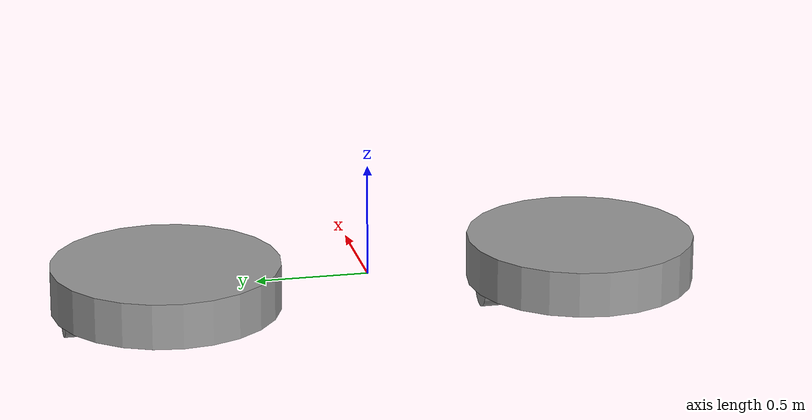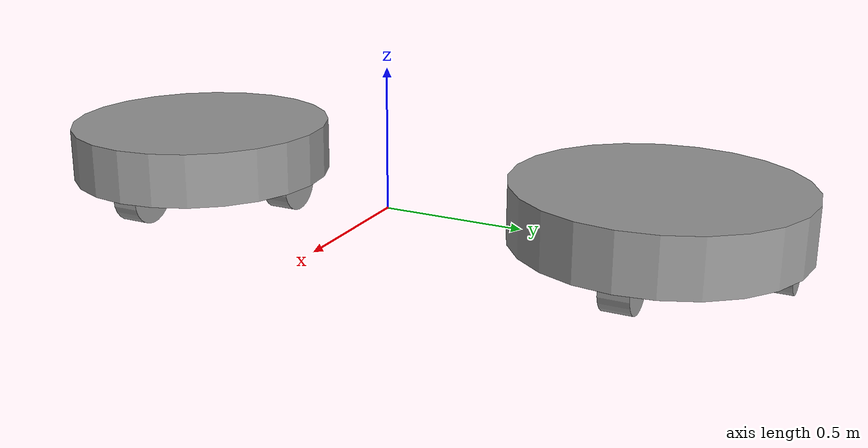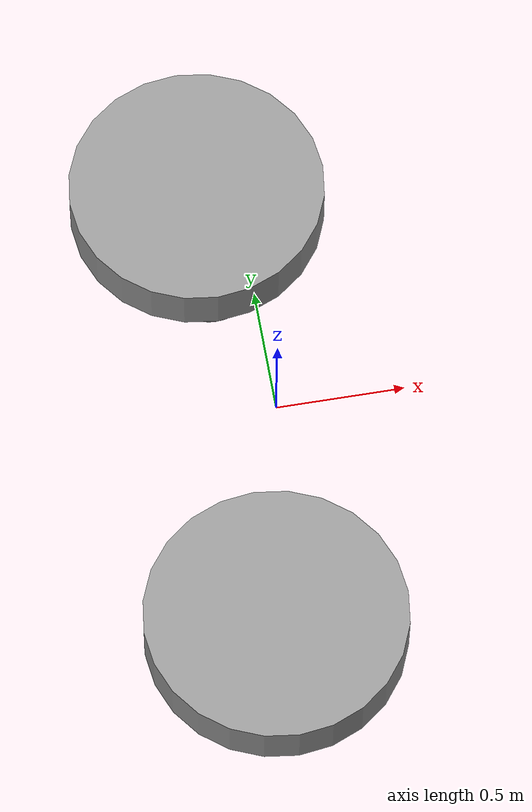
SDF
<?xml version='1.0'?>
<sdf version='1.6'>
  <model name='rooma'>
    <link name='link_0'>
      <inertial>
        <mass>0.991571</mass>
        <inertia>
          <ixx>0.0647587</ixx>
          <ixy>0</ixy>
          <ixz>0</ixz>
          <iyy>0.0647587</iyy>
          <iyz>0</iyz>
          <izz>0.122907</izz>
        </inertia>
        <pose frame=''>0 0 0 0 -0 0</pose>
      </inertial>
      <pose frame=''>-0.155963 0.92094 0.075 0 -0 0</pose>
      <gravity>1</gravity>
      <self_collide>0</self_collide>
      <kinematic>0</kinematic>
      <enable_wind>0</enable_wind>
      <visual name='visual'>
        <pose frame=''>0 0 0 0 -0 0</pose>
        <geometry>
          <cylinder>
            <radius>0.5</radius>
            <length>0.2</length>
          </cylinder>
        </geometry>
        <material>
          <lighting>1</lighting>
          <script>
            <uri>file://media/materials/scripts/gazebo.material</uri>
            <name>Gazebo/Grey</name>
          </script>
          <shader type='vertex'>
            <normal_map>__default__</normal_map>
          </shader>
          <ambient>0.3 0.3 0.3 1</ambient>
          <diffuse>0.7 0.7 0.7 1</diffuse>
          <specular>0.01 0.01 0.01 1</specular>
          <emissive>0 0 0 1</emissive>
        </material>
        <transparency>0</transparency>
        <cast_shadows>1</cast_shadows>
      </visual>
      <collision name='collision'>
        <laser_retro>0</laser_retro>
        <max_contacts>10</max_contacts>
        <pose frame=''>0 0 0 0 -0 0</pose>
        <geometry>
          <cylinder>
            <radius>0.5</radius>
            <length>0.2</length>
          </cylinder>
        </geometry>
        <surface>
          <friction>
            <ode>
              <mu>1</mu>
              <mu2>1</mu2>
              <fdir1>0 0 0</fdir1>
              <slip1>0</slip1>
              <slip2>0</slip2>
            </ode>
            <torsional>
              <coefficient>1</coefficient>
              <patch_radius>0</patch_radius>
              <surface_radius>0</surface_radius>
              <use_patch_radius>1</use_patch_radius>
              <ode>
                <slip>0</slip>
              </ode>
            </torsional>
          </friction>
          <bounce>
            <restitution_coefficient>0</restitution_coefficient>
            <threshold>1e+06</threshold>
          </bounce>
          <contact>
            <collide_without_contact>0</collide_without_contact>
            <collide_without_contact_bitmask>1</collide_without_contact_bitmask>
            <collide_bitmask>1</collide_bitmask>
            <ode>
              <soft_cfm>0</soft_cfm>
              <soft_erp>0.2</soft_erp>
              <kp>1e+13</kp>
              <kd>1</kd>
              <max_vel>0.01</max_vel>
              <min_depth>0</min_depth>
            </ode>
            <bullet>
              <split_impulse>1</split_impulse>
              <split_impulse_penetration_threshold>-0.01</split_impulse_penetration_threshold>
              <soft_cfm>0</soft_cfm>
              <soft_erp>0.2</soft_erp>
              <kp>1e+13</kp>
              <kd>1</kd>
            </bullet>
          </contact>
        </surface>
      </collision>
    </link>
    <link name='link_0_clone'>
      <inertial>
        <mass>0.991571</mass>
        <inertia>
          <ixx>0.0647587</ixx>
          <ixy>0</ixy>
          <ixz>0</ixz>
          <iyy>0.0647587</iyy>
          <iyz>0</iyz>
          <izz>0.122907</izz>
        </inertia>
        <pose frame=''>0 0 0 0 -0 0</pose>
      </inertial>
      <pose frame=''>-0.163805 -0.920936 0.075 0 -0 0</pose>
      <gravity>1</gravity>
      <self_collide>0</self_collide>
      <kinematic>0</kinematic>
      <enable_wind>0</enable_wind>
      <visual name='visual'>
        <pose frame=''>0 0 0 0 -0 0</pose>
        <geometry>
          <cylinder>
            <radius>0.5</radius>
            <length>0.2</length>
          </cylinder>
        </geometry>
        <material>
          <lighting>1</lighting>
          <script>
            <uri>file://media/materials/scripts/gazebo.material</uri>
            <name>Gazebo/Grey</name>
          </script>
          <shader type='vertex'>
            <normal_map>__default__</normal_map>
          </shader>
          <ambient>0.3 0.3 0.3 1</ambient>
          <diffuse>0.7 0.7 0.7 1</diffuse>
          <specular>0.01 0.01 0.01 1</specular>
          <emissive>0 0 0 1</emissive>
        </material>
        <transparency>0</transparency>
        <cast_shadows>1</cast_shadows>
      </visual>
      <collision name='collision'>
        <laser_retro>0</laser_retro>
        <max_contacts>10</max_contacts>
        <pose frame=''>0 0 0 0 -0 0</pose>
        <geometry>
          <cylinder>
            <radius>0.5</radius>
            <length>0.2</length>
          </cylinder>
        </geometry>
        <surface>
          <friction>
            <ode>
              <mu>1</mu>
              <mu2>1</mu2>
              <fdir1>0 0 0</fdir1>
              <slip1>0</slip1>
              <slip2>0</slip2>
            </ode>
            <torsional>
              <coefficient>1</coefficient>
              <patch_radius>0</patch_radius>
              <surface_radius>0</surface_radius>
              <use_patch_radius>1</use_patch_radius>
              <ode>
                <slip>0</slip>
              </ode>
            </torsional>
          </friction>
          <bounce>
            <restitution_coefficient>0</restitution_coefficient>
            <threshold>1e+06</threshold>
          </bounce>
          <contact>
            <collide_without_contact>0</collide_without_contact>
            <collide_without_contact_bitmask>1</collide_without_contact_bitmask>
            <collide_bitmask>1</collide_bitmask>
            <ode>
              <soft_cfm>0</soft_cfm>
              <soft_erp>0.2</soft_erp>
              <kp>1e+13</kp>
              <kd>1</kd>
              <max_vel>0.01</max_vel>
              <min_depth>0</min_depth>
            </ode>
            <bullet>
              <split_impulse>1</split_impulse>
              <split_impulse_penetration_threshold>-0.01</split_impulse_penetration_threshold>
              <soft_cfm>0</soft_cfm>
              <soft_erp>0.2</soft_erp>
              <kp>1e+13</kp>
              <kd>1</kd>
            </bullet>
          </contact>
        </surface>
      </collision>
    </link>
    <link name='link_1_clone'>
      <inertial>
        <mass>1</mass>
        <inertia>
          <ixx>0.145833</ixx>
          <ixy>0</ixy>
          <ixz>0</ixz>
          <iyy>0.145833</iyy>
          <iyz>0</iyz>
          <izz>0.125</izz>
        </inertia>
        <pose frame=''>0 0 0 0 -0 0</pose>
      </inertial>
      <pose frame=''>-0.155963 0.52094 -0.025 1.5707 -0 0</pose>
      <gravity>1</gravity>
      <self_collide>0</self_collide>
      <kinematic>0</kinematic>
      <enable_wind>0</enable_wind>
      <visual name='visual'>
        <pose frame=''>0 0 0 0 -0 0</pose>
        <geometry>
          <cylinder>
            <radius>0.1</radius>
            <length>0.1</length>
          </cylinder>
        </geometry>
        <material>
          <lighting>1</lighting>
          <script>
            <uri>file://media/materials/scripts/gazebo.material</uri>
            <name>Gazebo/Grey</name>
          </script>
          <shader type='vertex'>
            <normal_map>__default__</normal_map>
          </shader>
          <ambient>0.3 0.3 0.3 1</ambient>
          <diffuse>0.7 0.7 0.7 1</diffuse>
          <specular>0.01 0.01 0.01 1</specular>
          <emissive>0 0 0 1</emissive>
        </material>
        <transparency>0</transparency>
        <cast_shadows>1</cast_shadows>
      </visual>
      <collision name='collision'>
        <laser_retro>0</laser_retro>
        <max_contacts>10</max_contacts>
        <pose frame=''>0 0 0 0 -0 0</pose>
        <geometry>
          <cylinder>
            <radius>0.1</radius>
            <length>0.1</length>
          </cylinder>
        </geometry>
        <surface>
          <friction>
            <ode>
              <mu>1</mu>
              <mu2>1</mu2>
              <fdir1>0 0 0</fdir1>
              <slip1>0</slip1>
              <slip2>0</slip2>
            </ode>
            <torsional>
              <coefficient>1</coefficient>
              <patch_radius>0</patch_radius>
              <surface_radius>0</surface_radius>
              <use_patch_radius>1</use_patch_radius>
              <ode>
                <slip>0</slip>
              </ode>
            </torsional>
          </friction>
          <bounce>
            <restitution_coefficient>0</restitution_coefficient>
            <threshold>1e+06</threshold>
          </bounce>
          <contact>
            <collide_without_contact>0</collide_without_contact>
            <collide_without_contact_bitmask>1</collide_without_contact_bitmask>
            <collide_bitmask>1</collide_bitmask>
            <ode>
              <soft_cfm>0</soft_cfm>
              <soft_erp>0.2</soft_erp>
              <kp>1e+13</kp>
              <kd>1</kd>
              <max_vel>0.01</max_vel>
              <min_depth>0</min_depth>
            </ode>
            <bullet>
              <split_impulse>1</split_impulse>
              <split_impulse_penetration_threshold>-0.01</split_impulse_penetration_threshold>
              <soft_cfm>0</soft_cfm>
              <soft_erp>0.2</soft_erp>
              <kp>1e+13</kp>
              <kd>1</kd>
            </bullet>
          </contact>
        </surface>
      </collision>
    </link>
    <link name='link_1_clone_clone'>
      <inertial>
        <mass>1</mass>
        <inertia>
          <ixx>0.145833</ixx>
          <ixy>0</ixy>
          <ixz>0</ixz>
          <iyy>0.145833</iyy>
          <iyz>0</iyz>
          <izz>0.125</izz>
        </inertia>
        <pose frame=''>0 0 0 0 -0 0</pose>
      </inertial>
      <pose frame=''>-0.155963 1.32094 -0.025 1.5707 -0 0</pose>
      <gravity>1</gravity>
      <self_collide>0</self_collide>
      <kinematic>0</kinematic>
      <enable_wind>0</enable_wind>
      <visual name='visual'>
        <pose frame=''>0 0 0 0 -0 0</pose>
        <geometry>
          <cylinder>
            <radius>0.1</radius>
            <length>0.1</length>
          </cylinder>
        </geometry>
        <material>
          <lighting>1</lighting>
          <script>
            <uri>file://media/materials/scripts/gazebo.material</uri>
            <name>Gazebo/Grey</name>
          </script>
          <shader type='vertex'>
            <normal_map>__default__</normal_map>
          </shader>
          <ambient>0.3 0.3 0.3 1</ambient>
          <diffuse>0.7 0.7 0.7 1</diffuse>
          <specular>0.01 0.01 0.01 1</specular>
          <emissive>0 0 0 1</emissive>
        </material>
        <transparency>0</transparency>
        <cast_shadows>1</cast_shadows>
      </visual>
      <collision name='collision'>
        <laser_retro>0</laser_retro>
        <max_contacts>10</max_contacts>
        <pose frame=''>0 0 0 0 -0 0</pose>
        <geometry>
          <cylinder>
            <radius>0.1</radius>
            <length>0.1</length>
          </cylinder>
        </geometry>
        <surface>
          <friction>
            <ode>
              <mu>1</mu>
              <mu2>1</mu2>
              <fdir1>0 0 0</fdir1>
              <slip1>0</slip1>
              <slip2>0</slip2>
            </ode>
            <torsional>
              <coefficient>1</coefficient>
              <patch_radius>0</patch_radius>
              <surface_radius>0</surface_radius>
              <use_patch_radius>1</use_patch_radius>
              <ode>
                <slip>0</slip>
              </ode>
            </torsional>
          </friction>
          <bounce>
            <restitution_coefficient>0</restitution_coefficient>
            <threshold>1e+06</threshold>
          </bounce>
          <contact>
            <collide_without_contact>0</collide_without_contact>
            <collide_without_contact_bitmask>1</collide_without_contact_bitmask>
            <collide_bitmask>1</collide_bitmask>
            <ode>
              <soft_cfm>0</soft_cfm>
              <soft_erp>0.2</soft_erp>
              <kp>1e+13</kp>
              <kd>1</kd>
              <max_vel>0.01</max_vel>
              <min_depth>0</min_depth>
            </ode>
            <bullet>
              <split_impulse>1</split_impulse>
              <split_impulse_penetration_threshold>-0.01</split_impulse_penetration_threshold>
              <soft_cfm>0</soft_cfm>
              <soft_erp>0.2</soft_erp>
              <kp>1e+13</kp>
              <kd>1</kd>
            </bullet>
          </contact>
        </surface>
      </collision>
    </link>
    <link name='link_1_clone_clone_0'>
      <inertial>
        <mass>1</mass>
        <inertia>
          <ixx>0.145833</ixx>
          <ixy>0</ixy>
          <ixz>0</ixz>
          <iyy>0.145833</iyy>
          <iyz>0</iyz>
          <izz>0.125</izz>
        </inertia>
        <pose frame=''>0 0 0 0 -0 0</pose>
      </inertial>
      <pose frame=''>0.225955 0.92094 -0.025 1.5707 -0 0</pose>
      <gravity>1</gravity>
      <self_collide>0</self_collide>
      <kinematic>0</kinematic>
      <enable_wind>0</enable_wind>
      <visual name='visual'>
        <pose frame=''>0 0 0 0 -0 0</pose>
        <geometry>
          <cylinder>
            <radius>0.1</radius>
            <length>0.1</length>
          </cylinder>
        </geometry>
        <material>
          <lighting>1</lighting>
          <script>
            <uri>file://media/materials/scripts/gazebo.material</uri>
            <name>Gazebo/Grey</name>
          </script>
          <shader type='vertex'>
            <normal_map>__default__</normal_map>
          </shader>
          <ambient>0.3 0.3 0.3 1</ambient>
          <diffuse>0.7 0.7 0.7 1</diffuse>
          <specular>0.01 0.01 0.01 1</specular>
          <emissive>0 0 0 1</emissive>
        </material>
        <transparency>0</transparency>
        <cast_shadows>1</cast_shadows>
      </visual>
      <collision name='collision'>
        <laser_retro>0</laser_retro>
        <max_contacts>10</max_contacts>
        <pose frame=''>0 0 0 0 -0 0</pose>
        <geometry>
          <cylinder>
            <radius>0.1</radius>
            <length>0.1</length>
          </cylinder>
        </geometry>
        <surface>
          <friction>
            <ode>
              <mu>1</mu>
              <mu2>1</mu2>
              <fdir1>0 0 0</fdir1>
              <slip1>0</slip1>
              <slip2>0</slip2>
            </ode>
            <torsional>
              <coefficient>1</coefficient>
              <patch_radius>0</patch_radius>
              <surface_radius>0</surface_radius>
              <use_patch_radius>1</use_patch_radius>
              <ode>
                <slip>0</slip>
              </ode>
            </torsional>
          </friction>
          <bounce>
            <restitution_coefficient>0</restitution_coefficient>
            <threshold>1e+06</threshold>
          </bounce>
          <contact>
            <collide_without_contact>0</collide_without_contact>
            <collide_without_contact_bitmask>1</collide_without_contact_bitmask>
            <collide_bitmask>1</collide_bitmask>
            <ode>
              <soft_cfm>0</soft_cfm>
              <soft_erp>0.2</soft_erp>
              <kp>1e+13</kp>
              <kd>1</kd>
              <max_vel>0.01</max_vel>
              <min_depth>0</min_depth>
            </ode>
            <bullet>
              <split_impulse>1</split_impulse>
              <split_impulse_penetration_threshold>-0.01</split_impulse_penetration_threshold>
              <soft_cfm>0</soft_cfm>
              <soft_erp>0.2</soft_erp>
              <kp>1e+13</kp>
              <kd>1</kd>
            </bullet>
          </contact>
        </surface>
      </collision>
    </link>
    <link name='link_1_clone_clone_1'>
      <inertial>
        <mass>1</mass>
        <inertia>
          <ixx>0.145833</ixx>
          <ixy>0</ixy>
          <ixz>0</ixz>
          <iyy>0.145833</iyy>
          <iyz>0</iyz>
          <izz>0.125</izz>
        </inertia>
        <pose frame=''>0 0 0 0 -0 0</pose>
      </inertial>
      <pose frame=''>-0.163805 -1.32094 -0.025 1.5707 -0 0</pose>
      <gravity>1</gravity>
      <self_collide>0</self_collide>
      <kinematic>0</kinematic>
      <enable_wind>0</enable_wind>
      <visual name='visual'>
        <pose frame=''>0 0 0 0 -0 0</pose>
        <geometry>
          <cylinder>
            <radius>0.1</radius>
            <length>0.1</length>
          </cylinder>
        </geometry>
        <material>
          <lighting>1</lighting>
          <script>
            <uri>file://media/materials/scripts/gazebo.material</uri>
            <name>Gazebo/Grey</name>
          </script>
          <shader type='vertex'>
            <normal_map>__default__</normal_map>
          </shader>
          <ambient>0.3 0.3 0.3 1</ambient>
          <diffuse>0.7 0.7 0.7 1</diffuse>
          <specular>0.01 0.01 0.01 1</specular>
          <emissive>0 0 0 1</emissive>
        </material>
        <transparency>0</transparency>
        <cast_shadows>1</cast_shadows>
      </visual>
      <collision name='collision'>
        <laser_retro>0</laser_retro>
        <max_contacts>10</max_contacts>
        <pose frame=''>0 0 0 0 -0 0</pose>
        <geometry>
          <cylinder>
            <radius>0.1</radius>
            <length>0.1</length>
          </cylinder>
        </geometry>
        <surface>
          <friction>
            <ode>
              <mu>1</mu>
              <mu2>1</mu2>
              <fdir1>0 0 0</fdir1>
              <slip1>0</slip1>
              <slip2>0</slip2>
            </ode>
            <torsional>
              <coefficient>1</coefficient>
              <patch_radius>0</patch_radius>
              <surface_radius>0</surface_radius>
              <use_patch_radius>1</use_patch_radius>
              <ode>
                <slip>0</slip>
              </ode>
            </torsional>
          </friction>
          <bounce>
            <restitution_coefficient>0</restitution_coefficient>
            <threshold>1e+06</threshold>
          </bounce>
          <contact>
            <collide_without_contact>0</collide_without_contact>
            <collide_without_contact_bitmask>1</collide_without_contact_bitmask>
            <collide_bitmask>1</collide_bitmask>
            <ode>
              <soft_cfm>0</soft_cfm>
              <soft_erp>0.2</soft_erp>
              <kp>1e+13</kp>
              <kd>1</kd>
              <max_vel>0.01</max_vel>
              <min_depth>0</min_depth>
            </ode>
            <bullet>
              <split_impulse>1</split_impulse>
              <split_impulse_penetration_threshold>-0.01</split_impulse_penetration_threshold>
              <soft_cfm>0</soft_cfm>
              <soft_erp>0.2</soft_erp>
              <kp>1e+13</kp>
              <kd>1</kd>
            </bullet>
          </contact>
        </surface>
      </collision>
    </link>
    <link name='link_1_clone_clone_2'>
      <inertial>
        <mass>1</mass>
        <inertia>
          <ixx>0.145833</ixx>
          <ixy>0</ixy>
          <ixz>0</ixz>
          <iyy>0.145833</iyy>
          <iyz>0</iyz>
          <izz>0.125</izz>
        </inertia>
        <pose frame=''>0 0 0 0 -0 0</pose>
      </inertial>
      <pose frame=''>-0.163805 -0.520936 -0.025 1.5707 -0 0</pose>
      <gravity>1</gravity>
      <self_collide>0</self_collide>
      <kinematic>0</kinematic>
      <enable_wind>0</enable_wind>
      <visual name='visual'>
        <pose frame=''>0 0 0 0 -0 0</pose>
        <geometry>
          <cylinder>
            <radius>0.1</radius>
            <length>0.1</length>
          </cylinder>
        </geometry>
        <material>
          <lighting>1</lighting>
          <script>
            <uri>file://media/materials/scripts/gazebo.material</uri>
            <name>Gazebo/Grey</name>
          </script>
          <shader type='vertex'>
            <normal_map>__default__</normal_map>
          </shader>
          <ambient>0.3 0.3 0.3 1</ambient>
          <diffuse>0.7 0.7 0.7 1</diffuse>
          <specular>0.01 0.01 0.01 1</specular>
          <emissive>0 0 0 1</emissive>
        </material>
        <transparency>0</transparency>
        <cast_shadows>1</cast_shadows>
      </visual>
      <collision name='collision'>
        <laser_retro>0</laser_retro>
        <max_contacts>10</max_contacts>
        <pose frame=''>0 0 0 0 -0 0</pose>
        <geometry>
          <cylinder>
            <radius>0.1</radius>
            <length>0.1</length>
          </cylinder>
        </geometry>
        <surface>
          <friction>
            <ode>
              <mu>1</mu>
              <mu2>1</mu2>
              <fdir1>0 0 0</fdir1>
              <slip1>0</slip1>
              <slip2>0</slip2>
            </ode>
            <torsional>
              <coefficient>1</coefficient>
              <patch_radius>0</patch_radius>
              <surface_radius>0</surface_radius>
              <use_patch_radius>1</use_patch_radius>
              <ode>
                <slip>0</slip>
              </ode>
            </torsional>
          </friction>
          <bounce>
            <restitution_coefficient>0</restitution_coefficient>
            <threshold>1e+06</threshold>
          </bounce>
          <contact>
            <collide_without_contact>0</collide_without_contact>
            <collide_without_contact_bitmask>1</collide_without_contact_bitmask>
            <collide_bitmask>1</collide_bitmask>
            <ode>
              <soft_cfm>0</soft_cfm>
              <soft_erp>0.2</soft_erp>
              <kp>1e+13</kp>
              <kd>1</kd>
              <max_vel>0.01</max_vel>
              <min_depth>0</min_depth>
            </ode>
            <bullet>
              <split_impulse>1</split_impulse>
              <split_impulse_penetration_threshold>-0.01</split_impulse_penetration_threshold>
              <soft_cfm>0</soft_cfm>
              <soft_erp>0.2</soft_erp>
              <kp>1e+13</kp>
              <kd>1</kd>
            </bullet>
          </contact>
        </surface>
      </collision>
    </link>
    <link name='link_1_clone_clone_3'>
      <inertial>
        <mass>1</mass>
        <inertia>
          <ixx>0.145833</ixx>
          <ixy>0</ixy>
          <ixz>0</ixz>
          <iyy>0.145833</iyy>
          <iyz>0</iyz>
          <izz>0.125</izz>
        </inertia>
        <pose frame=''>0 0 0 0 -0 0</pose>
      </inertial>
      <pose frame=''>0.216195 -0.920936 -0.025 1.5707 -0 0</pose>
      <gravity>1</gravity>
      <self_collide>0</self_collide>
      <kinematic>0</kinematic>
      <enable_wind>0</enable_wind>
      <visual name='visual'>
        <pose frame=''>0 0 0 0 -0 0</pose>
        <geometry>
          <cylinder>
            <radius>0.1</radius>
            <length>0.1</length>
          </cylinder>
        </geometry>
        <material>
          <lighting>1</lighting>
          <script>
            <uri>file://media/materials/scripts/gazebo.material</uri>
            <name>Gazebo/Grey</name>
          </script>
          <shader type='vertex'>
            <normal_map>__default__</normal_map>
          </shader>
          <ambient>0.3 0.3 0.3 1</ambient>
          <diffuse>0.7 0.7 0.7 1</diffuse>
          <specular>0.01 0.01 0.01 1</specular>
          <emissive>0 0 0 1</emissive>
        </material>
        <transparency>0</transparency>
        <cast_shadows>1</cast_shadows>
      </visual>
      <collision name='collision'>
        <laser_retro>0</laser_retro>
        <max_contacts>10</max_contacts>
        <pose frame=''>0 0 0 0 -0 0</pose>
        <geometry>
          <cylinder>
            <radius>0.1</radius>
            <length>0.1</length>
          </cylinder>
        </geometry>
        <surface>
          <friction>
            <ode>
              <mu>1</mu>
              <mu2>1</mu2>
              <fdir1>0 0 0</fdir1>
              <slip1>0</slip1>
              <slip2>0</slip2>
            </ode>
            <torsional>
              <coefficient>1</coefficient>
              <patch_radius>0</patch_radius>
              <surface_radius>0</surface_radius>
              <use_patch_radius>1</use_patch_radius>
              <ode>
                <slip>0</slip>
              </ode>
            </torsional>
          </friction>
          <bounce>
            <restitution_coefficient>0</restitution_coefficient>
            <threshold>1e+06</threshold>
          </bounce>
          <contact>
            <collide_without_contact>0</collide_without_contact>
            <collide_without_contact_bitmask>1</collide_without_contact_bitmask>
            <collide_bitmask>1</collide_bitmask>
            <ode>
              <soft_cfm>0</soft_cfm>
              <soft_erp>0.2</soft_erp>
              <kp>1e+13</kp>
              <kd>1</kd>
              <max_vel>0.01</max_vel>
              <min_depth>0</min_depth>
            </ode>
            <bullet>
              <split_impulse>1</split_impulse>
              <split_impulse_penetration_threshold>-0.01</split_impulse_penetration_threshold>
              <soft_cfm>0</soft_cfm>
              <soft_erp>0.2</soft_erp>
              <kp>1e+13</kp>
              <kd>1</kd>
            </bullet>
          </contact>
        </surface>
      </collision>
    </link>
    <joint name='link_0_JOINT_2' type='revolute'>
      <parent>link_0</parent>
      <child>link_1_clone</child>
      <pose frame=''>0 0 0 0 -0 0</pose>
      <axis>
        <xyz>0 0 1</xyz>
        <use_parent_model_frame>0</use_parent_model_frame>
        <limit>
          <lower>-1.79769e+308</lower>
          <upper>1.79769e+308</upper>
          <effort>-1</effort>
          <velocity>-1</velocity>
        </limit>
        <dynamics>
          <spring_reference>0</spring_reference>
          <spring_stiffness>0</spring_stiffness>
          <damping>0</damping>
        </dynamics>
      </axis>
      <physics>
        <ode>
          <limit>
            <cfm>0</cfm>
            <erp>0.2</erp>
          </limit>
          <suspension>
            <cfm>0</cfm>
            <erp>0.2</erp>
          </suspension>
        </ode>
      </physics>
    </joint>
    <joint name='link_0_JOINT_3' type='revolute'>
      <parent>link_0</parent>
      <child>link_1_clone_clone</child>
      <pose frame=''>0 0 0 0 -0 0</pose>
      <axis>
        <xyz>1 0 0</xyz>
        <use_parent_model_frame>0</use_parent_model_frame>
        <limit>
          <lower>-1.79769e+308</lower>
          <upper>1.79769e+308</upper>
          <effort>-1</effort>
          <velocity>-1</velocity>
        </limit>
        <dynamics>
          <spring_reference>0</spring_reference>
          <spring_stiffness>0</spring_stiffness>
          <damping>0</damping>
        </dynamics>
      </axis>
      <physics>
        <ode>
          <limit>
            <cfm>0</cfm>
            <erp>0.2</erp>
          </limit>
          <suspension>
            <cfm>0</cfm>
            <erp>0.2</erp>
          </suspension>
        </ode>
      </physics>
    </joint>
    <joint name='link_0_JOINT_4' type='revolute'>
      <parent>link_0</parent>
      <child>link_1_clone_clone_0</child>
      <pose frame=''>0 0 0 0 -0 0</pose>
      <axis>
        <xyz>1 0 0</xyz>
        <use_parent_model_frame>0</use_parent_model_frame>
        <limit>
          <lower>-1.79769e+308</lower>
          <upper>1.79769e+308</upper>
          <effort>-1</effort>
          <velocity>-1</velocity>
        </limit>
        <dynamics>
          <spring_reference>0</spring_reference>
          <spring_stiffness>0</spring_stiffness>
          <damping>0</damping>
        </dynamics>
      </axis>
      <physics>
        <ode>
          <limit>
            <cfm>0</cfm>
            <erp>0.2</erp>
          </limit>
          <suspension>
            <cfm>0</cfm>
            <erp>0.2</erp>
          </suspension>
        </ode>
      </physics>
    </joint>
    <joint name='link_0_clone_JOINT_5' type='revolute'>
      <parent>link_0_clone</parent>
      <child>link_1_clone_clone_1</child>
      <pose frame=''>0 0 0 0 -0 0</pose>
      <axis>
        <xyz>0 0 1</xyz>
        <use_parent_model_frame>0</use_parent_model_frame>
        <limit>
          <lower>-1.79769e+308</lower>
          <upper>1.79769e+308</upper>
          <effort>-1</effort>
          <velocity>-1</velocity>
        </limit>
        <dynamics>
          <spring_reference>0</spring_reference>
          <spring_stiffness>0</spring_stiffness>
          <damping>0</damping>
        </dynamics>
      </axis>
      <physics>
        <ode>
          <limit>
            <cfm>0</cfm>
            <erp>0.2</erp>
          </limit>
          <suspension>
            <cfm>0</cfm>
            <erp>0.2</erp>
          </suspension>
        </ode>
      </physics>
    </joint>
    <joint name='link_0_clone_JOINT_6' type='revolute'>
      <parent>link_0_clone</parent>
      <child>link_1_clone_clone_2</child>
      <pose frame=''>0 0 0 0 -0 0</pose>
      <axis>
        <xyz>0 0 1</xyz>
        <use_parent_model_frame>0</use_parent_model_frame>
        <limit>
          <lower>-1.79769e+308</lower>
          <upper>1.79769e+308</upper>
          <effort>-1</effort>
          <velocity>-1</velocity>
        </limit>
        <dynamics>
          <spring_reference>0</spring_reference>
          <spring_stiffness>0</spring_stiffness>
          <damping>0</damping>
        </dynamics>
      </axis>
      <physics>
        <ode>
          <limit>
            <cfm>0</cfm>
            <erp>0.2</erp>
          </limit>
          <suspension>
            <cfm>0</cfm>
            <erp>0.2</erp>
          </suspension>
        </ode>
      </physics>
    </joint>
    <joint name='link_0_clone_JOINT_7' type='revolute'>
      <parent>link_0_clone</parent>
      <child>link_1_clone_clone_3</child>
      <pose frame=''>0 0 0 0 -0 0</pose>
      <axis>
        <xyz>0 0 1</xyz>
        <use_parent_model_frame>0</use_parent_model_frame>
        <limit>
          <lower>-1.79769e+308</lower>
          <upper>1.79769e+308</upper>
          <effort>-1</effort>
          <velocity>-1</velocity>
        </limit>
        <dynamics>
          <spring_reference>0</spring_reference>
          <spring_stiffness>0</spring_stiffness>
          <damping>0</damping>
        </dynamics>
      </axis>
      <physics>
        <ode>
          <limit>
            <cfm>0</cfm>
            <erp>0.2</erp>
          </limit>
          <suspension>
            <cfm>0</cfm>
            <erp>0.2</erp>
          </suspension>
        </ode>
      </physics>
    </joint>
    <static>0</static>
    <allow_auto_disable>1</allow_auto_disable>
  </model>
</sdf>
